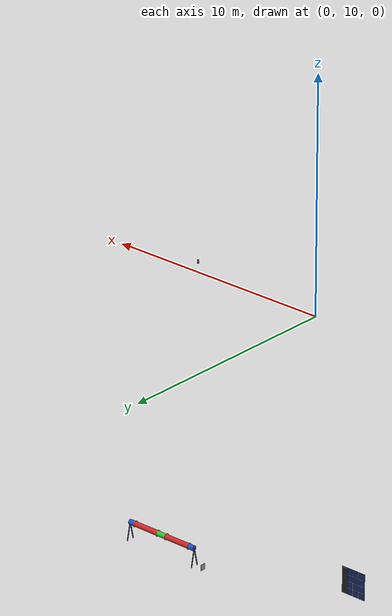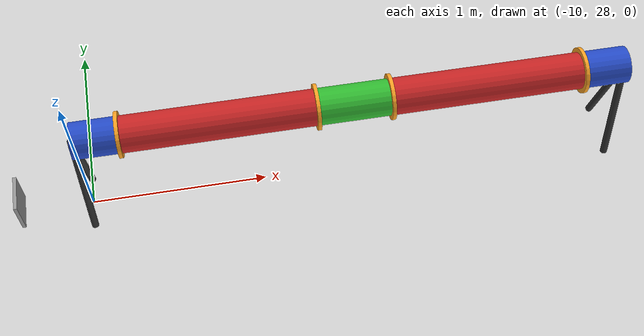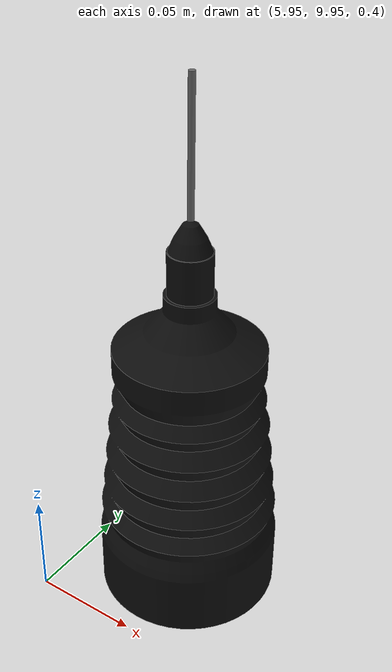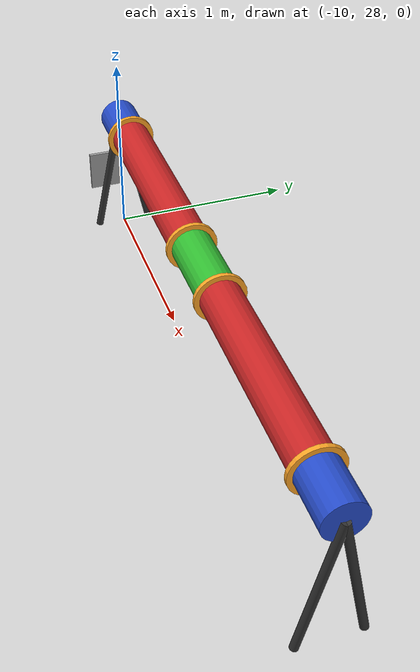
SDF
<sdf version="1.9">
 <world name="moon2">
  <spherical_coordinates>
   <surface_model>EARTH_WGS84</surface_model>
   <world_frame_orientation>ENU</world_frame_orientation>
   <latitude_deg>39.8942</latitude_deg>
   <longitude_deg>32.7845</longitude_deg>
   <elevation>900.0</elevation>
   <heading_deg>0</heading_deg>
  </spherical_coordinates>
  <gravity>0 0 -9.8</gravity>
  <physics name="lms" type="dart">
   <max_step_size>0.001</max_step_size>
   <real_time_factor>1.0</real_time_factor>
   <dart><collision_detector>bullet</collision_detector></dart>
  </physics>
  <plugin filename="gz-sim-physics-system" name="gz::sim::systems::Physics"/>
  <plugin filename="gz-sim-user-commands-system" name="gz::sim::systems::UserCommands"/>
  <plugin filename="gz-sim-sensors-system" name="gz::sim::systems::Sensors">
   <render_engine>ogre2</render_engine>
  </plugin>
  <plugin filename="gz-sim-scene-broadcaster-system" name="gz::sim::systems::SceneBroadcaster"/>
  <plugin filename="gz-sim-imu-system" name="gz::sim::systems::Imu"/>
  <plugin filename="gz-sim-contact-system" name="gz::sim::systems::Contact"/>
  <plugin filename="gz-sim-navsat-system" name="gz::sim::systems::NavSat"/>
  <light type="directional" name="sun">
   <pose>0 0 10000 0 0 0</pose>
   <diffuse>1.0 1.0 1.0 1.0</diffuse>
   <specular>0.2 0.2 0.2 1.0</specular>
   <attenuation>
    <range>100000</range>
    <constant>0.9</constant>
    <linear>0.01</linear>
    <quadratic>0.001</quadratic>
   </attenuation>
   <direction>-0.5 0.1 -1.0</direction>
  </light>
  <scene>
   <ambient>0.01 0.01 0.01 1</ambient>
   <background>0.0 0.0 0.0 1</background>
   <shadows>true</shadows>
   <origin_visual>false</origin_visual>
   <grid>false</grid>
  </scene>
  <include><name>arc_sensor_1</name><uri>model://arc_sensor</uri><pose>6 10 0.4 0 0 0</pose></include>
  <model name="arc26_pipe_collaboration_mission">
   <pose>-10.0 28.0 0 0 0 0</pose>
   <static>true</static>
   <link name="left_support">
    <visual name="left_leg_outer_visual">
     <pose>0 -0.075 0.35 -0.211 0 0</pose>
     <geometry><cylinder><radius>0.02</radius><length>0.716</length></cylinder></geometry>
     <material><ambient>0.15 0.15 0.15 1</ambient><diffuse>0.2 0.2 0.2 1</diffuse></material>
    </visual>
    <collision name="left_leg_outer_collision">
     <pose>0 -0.075 0.35 -0.211 0 0</pose>
     <geometry><cylinder><radius>0.02</radius><length>0.716</length></cylinder></geometry>
    </collision>
    <visual name="left_leg_inner_visual">
     <pose>0 0.075 0.35 0.211 0 0</pose>
     <geometry><cylinder><radius>0.02</radius><length>0.716</length></cylinder></geometry>
     <material><ambient>0.15 0.15 0.15 1</ambient><diffuse>0.2 0.2 0.2 1</diffuse></material>
    </visual>
    <collision name="left_leg_inner_collision">
     <pose>0 0.075 0.35 0.211 0 0</pose>
     <geometry><cylinder><radius>0.02</radius><length>0.716</length></cylinder></geometry>
    </collision>
   </link>
   <link name="right_support">
    <pose>3.0 0 0 0 0 0</pose>
    <visual name="right_leg_outer_visual">
     <pose>0 -0.075 0.35 -0.211 0 0</pose>
     <geometry><cylinder><radius>0.02</radius><length>0.716</length></cylinder></geometry>
     <material><ambient>0.15 0.15 0.15 1</ambient><diffuse>0.2 0.2 0.2 1</diffuse></material>
    </visual>
    <collision name="right_leg_outer_collision">
     <pose>0 -0.075 0.35 -0.211 0 0</pose>
     <geometry><cylinder><radius>0.02</radius><length>0.716</length></cylinder></geometry>
    </collision>
    <visual name="right_leg_inner_visual">
     <pose>0 0.075 0.35 0.211 0 0</pose>
     <geometry><cylinder><radius>0.02</radius><length>0.716</length></cylinder></geometry>
     <material><ambient>0.15 0.15 0.15 1</ambient><diffuse>0.2 0.2 0.2 1</diffuse></material>
    </visual>
    <collision name="right_leg_inner_collision">
     <pose>0 0.075 0.35 0.211 0 0</pose>
     <geometry><cylinder><radius>0.02</radius><length>0.716</length></cylinder></geometry>
    </collision>
   </link>
   <link name="pipe_segment_0">
    <pose>0.12 0 0.7 0 1.5708 0</pose>
    <visual name="visual">
     <geometry><cylinder><radius>0.1</radius><length>0.24</length></cylinder></geometry>
     <material><ambient>0.1 0.2 0.6 1</ambient><diffuse>0.15 0.3 0.8 1</diffuse></material>
    </visual>
    <collision name="collision">
     <geometry><cylinder><radius>0.1</radius><length>0.24</length></cylinder></geometry>
    </collision>
   </link>
   <link name="coupling_1">
    <pose>0.25 0 0.7 0 1.5708 0</pose>
    <visual name="visual">
     <geometry><cylinder><radius>0.125</radius><length>0.02</length></cylinder></geometry>
     <material><ambient>0.9 0.55 0.1 1</ambient><diffuse>1.0 0.65 0.15 1</diffuse></material>
    </visual>
    <collision name="collision">
     <geometry><cylinder><radius>0.125</radius><length>0.02</length></cylinder></geometry>
    </collision>
   </link>
   <link name="pipe_segment_1">
    <pose>0.775 0 0.7 0 1.5708 0</pose>
    <visual name="visual">
     <geometry><cylinder><radius>0.1</radius><length>1.03</length></cylinder></geometry>
     <material><ambient>0.6 0.1 0.1 1</ambient><diffuse>0.8 0.15 0.15 1</diffuse></material>
    </visual>
    <collision name="collision">
     <geometry><cylinder><radius>0.1</radius><length>1.03</length></cylinder></geometry>
    </collision>
   </link>
   <link name="coupling_2">
    <pose>1.3 0 0.7 0 1.5708 0</pose>
    <visual name="visual">
     <geometry><cylinder><radius>0.125</radius><length>0.02</length></cylinder></geometry>
     <material><ambient>0.9 0.55 0.1 1</ambient><diffuse>1.0 0.65 0.15 1</diffuse></material>
    </visual>
    <collision name="collision">
     <geometry><cylinder><radius>0.125</radius><length>0.02</length></cylinder></geometry>
    </collision>
   </link>
   <link name="pipe_segment_2">
    <pose>1.5 0 0.7 0 1.5708 0</pose>
    <visual name="visual">
     <geometry><cylinder><radius>0.1</radius><length>0.38</length></cylinder></geometry>
     <material><ambient>0.15 0.55 0.15 1</ambient><diffuse>0.2 0.75 0.2 1</diffuse></material>
    </visual>
    <collision name="collision">
     <geometry><cylinder><radius>0.1</radius><length>0.38</length></cylinder></geometry>
    </collision>
   </link>
   <link name="coupling_3">
    <pose>1.7 0 0.7 0 1.5708 0</pose>
    <visual name="visual">
     <geometry><cylinder><radius>0.125</radius><length>0.02</length></cylinder></geometry>
     <material><ambient>0.9 0.55 0.1 1</ambient><diffuse>1.0 0.65 0.15 1</diffuse></material>
    </visual>
    <collision name="collision">
     <geometry><cylinder><radius>0.125</radius><length>0.02</length></cylinder></geometry>
    </collision>
   </link>
   <link name="pipe_segment_3">
    <pose>2.225 0 0.7 0 1.5708 0</pose>
    <visual name="visual">
     <geometry><cylinder><radius>0.1</radius><length>1.03</length></cylinder></geometry>
     <material><ambient>0.6 0.1 0.1 1</ambient><diffuse>0.8 0.15 0.15 1</diffuse></material>
    </visual>
    <collision name="collision">
     <geometry><cylinder><radius>0.1</radius><length>1.03</length></cylinder></geometry>
    </collision>
   </link>
   <link name="coupling_4">
    <pose>2.75 0 0.7 0 1.5708 0</pose>
    <visual name="visual">
     <geometry><cylinder><radius>0.125</radius><length>0.02</length></cylinder></geometry>
     <material><ambient>0.9 0.55 0.1 1</ambient><diffuse>1.0 0.65 0.15 1</diffuse></material>
    </visual>
    <collision name="collision">
     <geometry><cylinder><radius>0.125</radius><length>0.02</length></cylinder></geometry>
    </collision>
   </link>
   <link name="pipe_segment_4">
    <pose>2.88 0 0.7 0 1.5708 0</pose>
    <visual name="visual">
     <geometry><cylinder><radius>0.1</radius><length>0.24</length></cylinder></geometry>
     <material><ambient>0.1 0.2 0.6 1</ambient><diffuse>0.15 0.3 0.8 1</diffuse></material>
    </visual>
    <collision name="collision">
     <geometry><cylinder><radius>0.1</radius><length>0.24</length></cylinder></geometry>
    </collision>
   </link>
   <link name="clamp_bracket_detail">
    <pose>-0.4 0 0.1175 0 0 0</pose>
    <visual name="visual">
     <geometry><box><size>0.02 0.2 0.235</size></box></geometry>
     <material><ambient>0.5 0.5 0.5 1</ambient><diffuse>0.6 0.6 0.6 1</diffuse></material>
    </visual>
    <collision name="collision"><geometry><box><size>0.02 0.2 0.235</size></box></geometry></collision>
   </link>
  </model>
  <model name="arc26_solar_panel_collaboration_mission">
   <pose>-16.0 26.0 0 0 0 0</pose>
   <static>true</static>
   <link name="pv_cell_array">
    <pose>0.375 0 0.5 0 0 0</pose>
    <visual name="cell_area_base_visual">
     <geometry><box><size>0.75 0.03 1.0</size></box></geometry>
     <material>
      <ambient>0.05 0.10 0.25 1</ambient>
      <diffuse>0.08 0.15 0.35 1</diffuse>
      <specular>0.3 0.3 0.4 1</specular>
     </material>
    </visual>
    <collision name="cell_area_collision"><geometry><box><size>0.75 0.03 1.0</size></box></geometry></collision>
    <visual name="grid_line_v1">
     <pose>-0.125 0.0165 0 0 0 0</pose>
     <geometry><box><size>0.01 0.005 1.0</size></box></geometry>
     <material><ambient>0.8 0.8 0.8 1</ambient><diffuse>0.9 0.9 0.9 1</diffuse></material>
    </visual>
    <visual name="grid_line_v2">
     <pose>0.125 0.0165 0 0 0 0</pose>
     <geometry><box><size>0.01 0.005 1.0</size></box></geometry>
     <material><ambient>0.8 0.8 0.8 1</ambient><diffuse>0.9 0.9 0.9 1</diffuse></material>
    </visual>
    <visual name="grid_line_h1">
     <pose>0 0.0165 -0.25 0 0 0</pose>
     <geometry><box><size>0.75 0.005 0.01</size></box></geometry>
     <material><ambient>0.8 0.8 0.8 1</ambient><diffuse>0.9 0.9 0.9 1</diffuse></material>
    </visual>
    <visual name="grid_line_h2">
     <pose>0 0.0165 0 0 0 0</pose>
     <geometry><box><size>0.75 0.005 0.01</size></box></geometry>
     <material><ambient>0.8 0.8 0.8 1</ambient><diffuse>0.9 0.9 0.9 1</diffuse></material>
    </visual>
    <visual name="grid_line_h3">
     <pose>0 0.0165 0.25 0 0 0</pose>
     <geometry><box><size>0.75 0.005 0.01</size></box></geometry>
     <material><ambient>0.8 0.8 0.8 1</ambient><diffuse>0.9 0.9 0.9 1</diffuse></material>
    </visual>
   </link>
   <link name="branding_strip">
    <pose>0.875 0 0.5 0 0 0</pose>
    <visual name="visual">
     <geometry><box><size>0.25 0.03 1.0</size></box></geometry>
     <material><ambient>0.08 0.08 0.08 1</ambient><diffuse>0.12 0.12 0.12 1</diffuse></material>
    </visual>
    <collision name="collision"><geometry><box><size>0.25 0.03 1.0</size></box></geometry></collision>
   </link>
  </model>
 </world>
</sdf>

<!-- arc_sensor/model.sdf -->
<sdf version="1.9">
  <model name="arc_sensor">

    <static>true</static>

    <link name="sensor_link">

      <inertial>
        <mass>0.35</mass>
        <pose>0 0 0.075 0 0 0</pose>
        <inertia>
          <ixx>0.0012</ixx>
          <iyy>0.0012</iyy>
          <izz>0.0004</izz>
          <ixy>0</ixy>
          <ixz>0</ixz>
          <iyz>0</iyz>
        </inertia>
      </inertial>

      <!-- VISUAL: high-fidelity revolved bellows body (dome + neck +    -->
      <!-- conical shoulder + ribbed housing + cylindrical base), built  -->
      <!-- from the dimensioned profile traced off the drawing.          -->
      <visual name="visual_body">
        <pose>0 0 0 0 0 0</pose>
        <geometry>
          <mesh>
            <uri>meshes/sensor_body.obj</uri>
            <scale>1 1 1</scale>
          </mesh>
        </geometry>
        <material>
          <ambient>0.02 0.02 0.02 1</ambient>
          <diffuse>0.05 0.05 0.05 1</diffuse>
          <specular>0.15 0.15 0.15 1</specular>
          <emissive>0 0 0 1</emissive>
        </material>
      </visual>

      <!-- Flexible whip antenna above the dome, drawn as a zig-zag
           (spring/whip) symbol. Modeled as a thin cylinder for
           collision/visual simplicity. -->
      <visual name="visual_whip_antenna">
        <pose>0 0 0.220 0 0 0</pose>
        <geometry>
          <cylinder>
            <radius>0.0015</radius>
            <length>0.060</length>
          </cylinder>
        </geometry>
        <material>
          <ambient>0.3 0.3 0.3 1</ambient>
          <diffuse>0.4 0.4 0.4 1</diffuse>
          <specular>0.5 0.5 0.5 1</specular>
        </material>
      </visual>

      <visual name="visual_slot_left">
        <pose>-0.018 0.0415 0.018 0 0 0</pose>
        <geometry>
          <box>
            <size>0.006 0.002 0.022</size>
          </box>
        </geometry>
        <material>
          <ambient>0.01 0.01 0.01 1</ambient>
          <diffuse>0.01 0.01 0.01 1</diffuse>
        </material>
      </visual>

      <visual name="visual_slot_right">
        <pose>0.018 0.0415 0.018 0 0 0</pose>
        <geometry>
          <box>
            <size>0.006 0.002 0.022</size>
          </box>
        </geometry>
        <material>
          <ambient>0.01 0.01 0.01 1</ambient>
          <diffuse>0.01 0.01 0.01 1</diffuse>
        </material>
      </visual>

      <!-- COLLISION: simplified compound primitives approximating the   -->
      <!-- visual envelope (cylindrical base + tapered bellows body as a -->
      <!-- conical frustum + dome cap + thin antenna stalk), for         -->
      <!-- efficient physics-engine collision checking.                  -->

      <!-- Base cylinder (the part planted/buried in the ground): Ø84mm -->
      <collision name="collision_base">
        <pose>0 0 0.015 0 0 0</pose>
        <geometry>
          <cylinder>
            <radius>0.042</radius>
            <length>0.030</length>
          </cylinder>
        </geometry>
        <surface>
          <friction>
            <ode>
              <mu>0.8</mu>
              <mu2>0.8</mu2>
            </ode>
          </friction>
        </surface>
      </collision>

      <!-- Ribbed bellows housing, approximated as a tapered cylinder
           (cone frustum) from the base up to the shoulder collar -->
      <collision name="collision_bellows">
        <pose>0 0 0.074 0 0 0</pose>
        <geometry>
          <cylinder>
            <radius>0.039</radius>
            <length>0.088</length>
          </cylinder>
        </geometry>
      </collision>

      <!-- Conical shoulder collar -->
      <collision name="collision_shoulder">
        <pose>0 0 0.133 0 0 0</pose>
        <geometry>
          <cylinder>
            <radius>0.020</radius>
            <length>0.030</length>
          </cylinder>
        </geometry>
      </collision>

      <!-- Neck + antenna stalk, Ø20mm -->
      <collision name="collision_stalk">
        <pose>0 0 0.168 0 0 0</pose>
        <geometry>
          <cylinder>
            <radius>0.010</radius>
            <length>0.040</length>
          </cylinder>
        </geometry>
      </collision>

      <!-- Dome cap -->
      <collision name="collision_dome">
        <pose>0 0 0.185 0 0 0</pose>
        <geometry>
          <sphere>
            <radius>0.0075</radius>
          </sphere>
        </geometry>
      </collision>

      <!-- Whip antenna -->
      <collision name="collision_whip">
        <pose>0 0 0.220 0 0 0</pose>
        <geometry>
          <cylinder>
            <radius>0.0015</radius>
            <length>0.060</length>
          </cylinder>
        </geometry>
      </collision>

    </link>

  </model>
</sdf>
